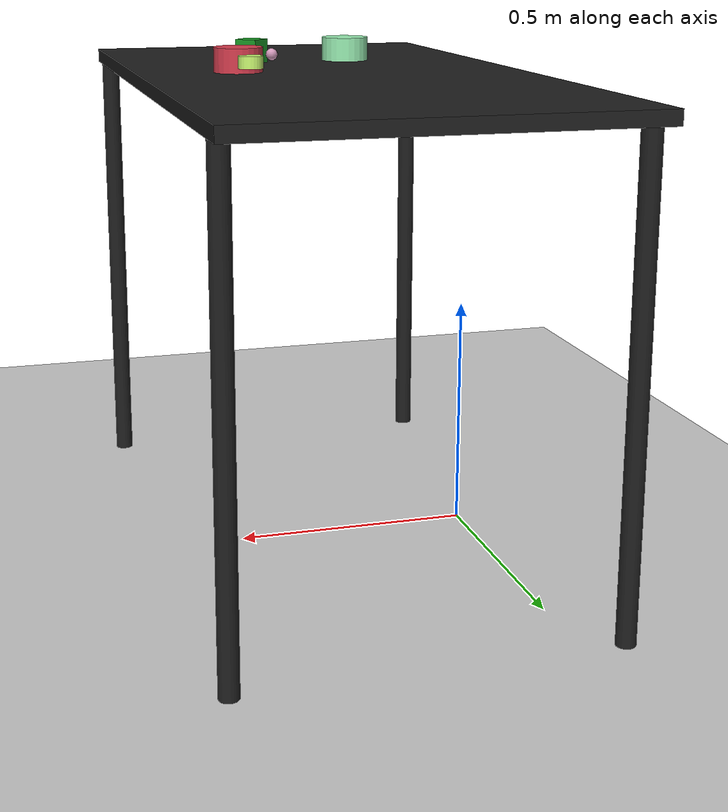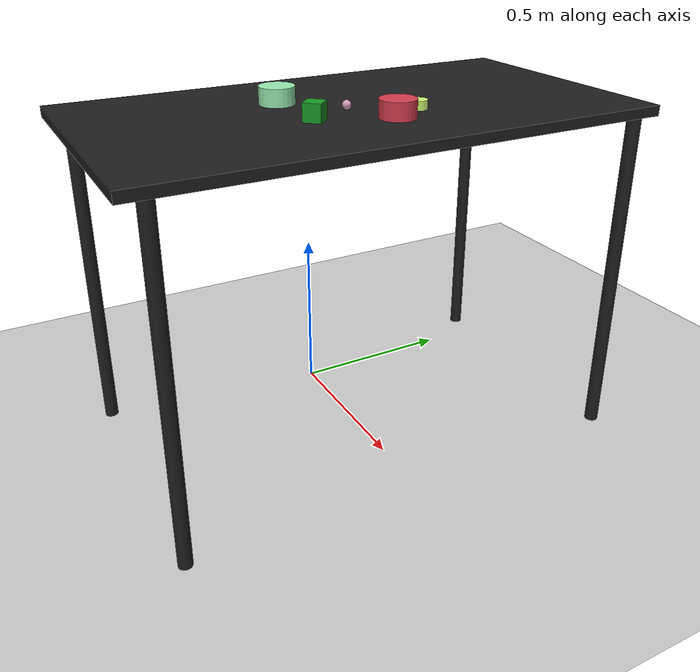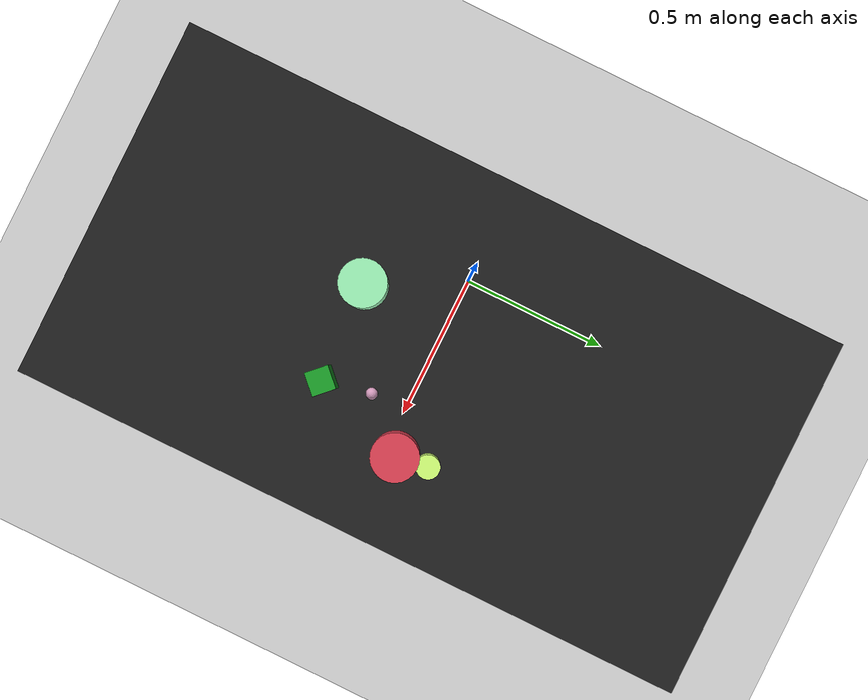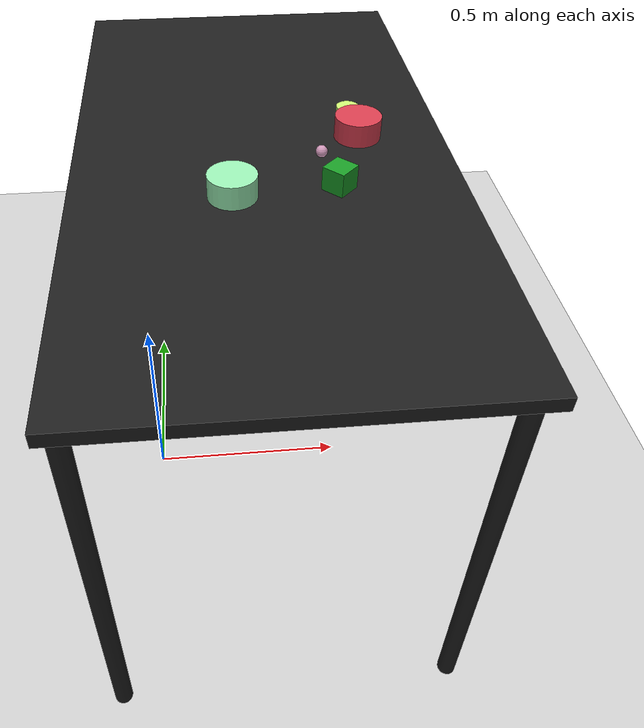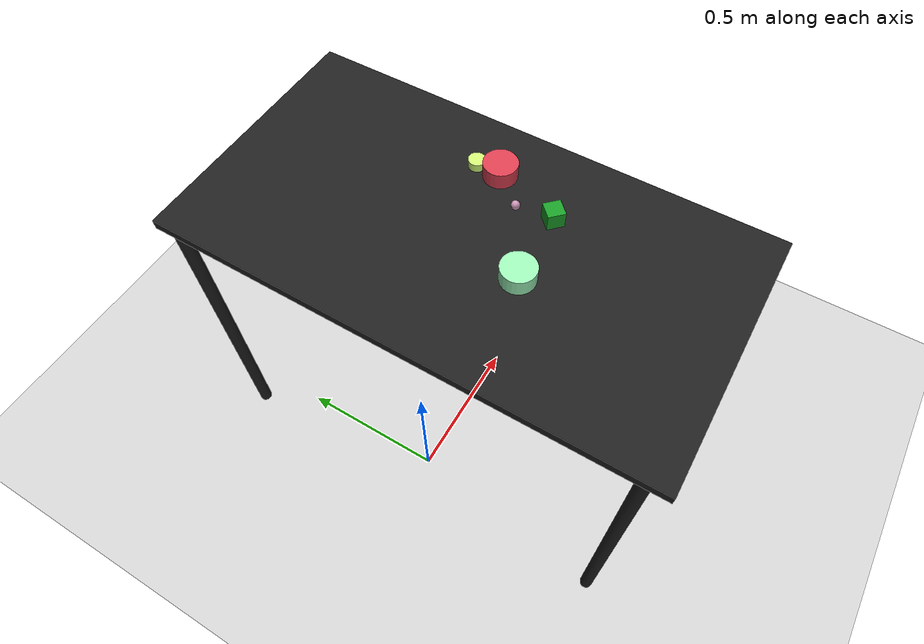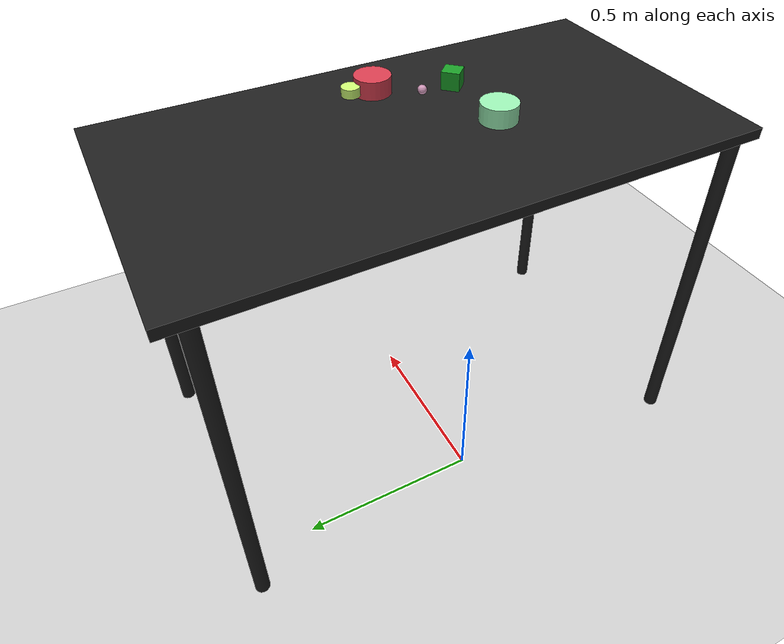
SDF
<?xml version="1.0" ?>
<sdf version="1.6">
  <world name="arm_world">
    <plugin filename="gz-sim-physics-system" name="gz::sim::systems::Physics">
      <engine>
        <filename>libgz-physics-bullet-featherstone-plugin.so</filename>
      </engine>
    </plugin>
    <plugin filename="gz-sim-user-commands-system" name="gz::sim::systems::UserCommands"/>
    <plugin filename="gz-sim-scene-broadcaster-system" name="gz::sim::systems::SceneBroadcaster"/>
    <plugin filename="gz-sim-sensors-system" name="gz::sim::systems::Sensors">
      <render_engine>ogre2</render_engine>
    </plugin>
    <gravity>0.0 0.0 -9.8</gravity>
    <scene>
      <shadows>false</shadows>
    </scene>
    <gui>
      <camera name="user_camera">
        <pose>0.75 -0.75 1.4 0 0.29 2.21</pose>
      </camera>
    </gui>
    <include>
      <uri>https://fuel.gazebosim.org/1.0/OpenRobotics/models/Sun</uri>
    </include>
    <model name="table">
      <static>true</static>
      <include>
        <uri>model://table</uri>
      </include>
      <pose>0.29 0 0 0 0 1.5708</pose>
    </model>
    <model name="ground_plane">
      <static>true</static>
      <link name="link">
        <collision name="collision">
          <geometry>
            <plane>
              <normal>0 0 1</normal>
            </plane>
          </geometry>
          <surface>
            <friction>
              <ode>
                <mu>1.0</mu>
                <mu2>1.0</mu2>
              </ode>
            </friction>
          </surface>
        </collision>
        <visual name="visual">
          <geometry>
            <plane>
              <normal>0 0 1</normal>
              <size>100 100</size>
            </plane>
          </geometry>
          <material>
            <ambient>0.8 0.8 0.8 1</ambient>
            <diffuse>0.8 0.8 0.8 1</diffuse>
            <specular>0.8 0.8 0.8 1</specular>
          </material>
        </visual>
      </link>
    </model>
    <model name="cube_m_0">
      <pose>0.428 -0.176 1.05 0 0 0.79</pose>
      <link name="cube_m_0_link">
        <inertial>
          <mass>0.05</mass>
          <inertia>
            <ixx>2.04e-7</ixx>
            <iyy>2.04e-7</iyy>
            <izz>3.9e-8</izz>
            <ixy>0</ixy>
            <ixz>0</ixz>
            <iyz>0</iyz>
          </inertia>
        </inertial>
        <collision name="cube_m_0_collision">
          <geometry>
            <box>
              <size>0.05 0.05 0.05</size>
            </box>
          </geometry>
          <surface>
            <friction>
              <ode>
                <mu>0.8</mu>
                <mu2>0.8</mu2>
                <fdir1>0 0 1</fdir1>
                <slip1>0.001</slip1>
                <slip2>0.001</slip2>
              </ode>
              <torsional>
                <coefficient>0.1</coefficient>
                <surface_radius>0.015</surface_radius>
                <use_patch_radius>true</use_patch_radius>
              </torsional>
            </friction>
            <contact>
              <ode>
                <kp>1e5</kp>
                <kd>10</kd>
                <max_vel>0.1</max_vel>
                <min_depth>0.001</min_depth>
                <soft_cfm>0.01</soft_cfm>
                <soft_erp>0.2</soft_erp>
              </ode>
            </contact>
            <bounce>
              <restitution_coefficient>0.2</restitution_coefficient>
              <threshold>0.01</threshold>
            </bounce>
          </surface>
        </collision>
        <visual name="cube_m_0_visual">
          <geometry>
            <box>
              <size>0.05 0.05 0.05</size>
            </box>
          </geometry>
          <material>
            <ambient>0.1 0.61 0.15 1</ambient>
            <diffuse>0.1 0.61 0.15 1</diffuse>
          </material>
        </visual>
        <velocity_decay>
          <linear>1</linear>
          <angular>1</angular>
        </velocity_decay>
      </link>
    </model>
    <model name="cylinder_l_1">
      <pose>0.499 0.024 1.05 0 0 0.23</pose>
      <link name="cylinder_l_1_link">
        <inertial>
          <mass>0.05</mass>
          <inertia>
            <ixx>2.04e-7</ixx>
            <iyy>2.04e-7</iyy>
            <izz>3.9e-8</izz>
            <ixy>0</ixy>
            <ixz>0</ixz>
            <iyz>0</iyz>
          </inertia>
        </inertial>
        <collision name="cylinder_l_1_collision">
          <geometry>
            <cylinder>
              <radius>0.05</radius>
              <length>0.05</length>
            </cylinder>
          </geometry>
          <surface>
            <friction>
              <ode>
                <mu>0.8</mu>
                <mu2>0.8</mu2>
                <fdir1>0 0 1</fdir1>
                <slip1>0.001</slip1>
                <slip2>0.001</slip2>
              </ode>
              <torsional>
                <coefficient>0.1</coefficient>
                <surface_radius>0.015</surface_radius>
                <use_patch_radius>true</use_patch_radius>
              </torsional>
            </friction>
            <contact>
              <ode>
                <kp>1e5</kp>
                <kd>10</kd>
                <max_vel>0.1</max_vel>
                <min_depth>0.001</min_depth>
                <soft_cfm>0.01</soft_cfm>
                <soft_erp>0.2</soft_erp>
              </ode>
            </contact>
            <bounce>
              <restitution_coefficient>0.2</restitution_coefficient>
              <threshold>0.01</threshold>
            </bounce>
          </surface>
        </collision>
        <visual name="cylinder_l_1_visual">
          <geometry>
            <cylinder>
              <radius>0.05</radius>
              <length>0.05</length>
            </cylinder>
          </geometry>
          <material>
            <ambient>0.84 0.24 0.31 1</ambient>
            <diffuse>0.84 0.24 0.31 1</diffuse>
          </material>
        </visual>
        <velocity_decay>
          <linear>1</linear>
          <angular>1</angular>
        </velocity_decay>
      </link>
    </model>
    <model name="cylinder_l_2">
      <pose>0.217 -0.186 1.05 0 0 4.1</pose>
      <link name="cylinder_l_2_link">
        <inertial>
          <mass>0.05</mass>
          <inertia>
            <ixx>2.04e-7</ixx>
            <iyy>2.04e-7</iyy>
            <izz>3.9e-8</izz>
            <ixy>0</ixy>
            <ixz>0</ixz>
            <iyz>0</iyz>
          </inertia>
        </inertial>
        <collision name="cylinder_l_2_collision">
          <geometry>
            <cylinder>
              <radius>0.05</radius>
              <length>0.05</length>
            </cylinder>
          </geometry>
          <surface>
            <friction>
              <ode>
                <mu>0.8</mu>
                <mu2>0.8</mu2>
                <fdir1>0 0 1</fdir1>
                <slip1>0.001</slip1>
                <slip2>0.001</slip2>
              </ode>
              <torsional>
                <coefficient>0.1</coefficient>
                <surface_radius>0.015</surface_radius>
                <use_patch_radius>true</use_patch_radius>
              </torsional>
            </friction>
            <contact>
              <ode>
                <kp>1e5</kp>
                <kd>10</kd>
                <max_vel>0.1</max_vel>
                <min_depth>0.001</min_depth>
                <soft_cfm>0.01</soft_cfm>
                <soft_erp>0.2</soft_erp>
              </ode>
            </contact>
            <bounce>
              <restitution_coefficient>0.2</restitution_coefficient>
              <threshold>0.01</threshold>
            </bounce>
          </surface>
        </collision>
        <visual name="cylinder_l_2_visual">
          <geometry>
            <cylinder>
              <radius>0.05</radius>
              <length>0.05</length>
            </cylinder>
          </geometry>
          <material>
            <ambient>0.6 0.93 0.7 1</ambient>
            <diffuse>0.6 0.93 0.7 1</diffuse>
          </material>
        </visual>
        <velocity_decay>
          <linear>1</linear>
          <angular>1</angular>
        </velocity_decay>
      </link>
    </model>
    <model name="cylinder_m_3">
      <pose>0.488 0.092 1.05 0 0 3.72</pose>
      <link name="cylinder_m_3_link">
        <inertial>
          <mass>0.05</mass>
          <inertia>
            <ixx>2.04e-7</ixx>
            <iyy>2.04e-7</iyy>
            <izz>3.9e-8</izz>
            <ixy>0</ixy>
            <ixz>0</ixz>
            <iyz>0</iyz>
          </inertia>
        </inertial>
        <collision name="cylinder_m_3_collision">
          <geometry>
            <cylinder>
              <radius>0.025</radius>
              <length>0.025</length>
            </cylinder>
          </geometry>
          <surface>
            <friction>
              <ode>
                <mu>0.8</mu>
                <mu2>0.8</mu2>
                <fdir1>0 0 1</fdir1>
                <slip1>0.001</slip1>
                <slip2>0.001</slip2>
              </ode>
              <torsional>
                <coefficient>0.1</coefficient>
                <surface_radius>0.015</surface_radius>
                <use_patch_radius>true</use_patch_radius>
              </torsional>
            </friction>
            <contact>
              <ode>
                <kp>1e5</kp>
                <kd>10</kd>
                <max_vel>0.1</max_vel>
                <min_depth>0.001</min_depth>
                <soft_cfm>0.01</soft_cfm>
                <soft_erp>0.2</soft_erp>
              </ode>
            </contact>
            <bounce>
              <restitution_coefficient>0.2</restitution_coefficient>
              <threshold>0.01</threshold>
            </bounce>
          </surface>
        </collision>
        <visual name="cylinder_m_3_visual">
          <geometry>
            <cylinder>
              <radius>0.025</radius>
              <length>0.025</length>
            </cylinder>
          </geometry>
          <material>
            <ambient>0.8 0.98 0.45 1</ambient>
            <diffuse>0.8 0.98 0.45 1</diffuse>
          </material>
        </visual>
        <velocity_decay>
          <linear>1</linear>
          <angular>1</angular>
        </velocity_decay>
      </link>
    </model>
    <model name="sphere_s_4">
      <pose>0.407 -0.074 1.05 0 0 2.7</pose>
      <link name="sphere_s_4_link">
        <inertial>
          <mass>0.05</mass>
          <inertia>
            <ixx>2.04e-7</ixx>
            <iyy>2.04e-7</iyy>
            <izz>3.9e-8</izz>
            <ixy>0</ixy>
            <ixz>0</ixz>
            <iyz>0</iyz>
          </inertia>
        </inertial>
        <collision name="sphere_s_4_collision">
          <geometry>
            <sphere>
              <radius>0.0125</radius>
            </sphere>
          </geometry>
          <surface>
            <friction>
              <ode>
                <mu>0.8</mu>
                <mu2>0.8</mu2>
                <fdir1>0 0 1</fdir1>
                <slip1>0.001</slip1>
                <slip2>0.001</slip2>
              </ode>
              <torsional>
                <coefficient>0.1</coefficient>
                <surface_radius>0.015</surface_radius>
                <use_patch_radius>true</use_patch_radius>
              </torsional>
            </friction>
            <contact>
              <ode>
                <kp>1e5</kp>
                <kd>10</kd>
                <max_vel>0.1</max_vel>
                <min_depth>0.001</min_depth>
                <soft_cfm>0.01</soft_cfm>
                <soft_erp>0.2</soft_erp>
              </ode>
            </contact>
            <bounce>
              <restitution_coefficient>0.2</restitution_coefficient>
              <threshold>0.01</threshold>
            </bounce>
          </surface>
        </collision>
        <visual name="sphere_s_4_visual">
          <geometry>
            <sphere>
              <radius>0.0125</radius>
            </sphere>
          </geometry>
          <material>
            <ambient>0.81 0.59 0.72 1</ambient>
            <diffuse>0.81 0.59 0.72 1</diffuse>
          </material>
        </visual>
        <velocity_decay>
          <linear>1</linear>
          <angular>1</angular>
        </velocity_decay>
      </link>
    </model>
  </world>
</sdf>

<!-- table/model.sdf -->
<sdf version="1.5">
  <model name="table">
    <static>true</static>
    <link name="link">
      <collision name="surface">
        <pose>0 0 1.0 0 0 0</pose>
        <geometry>
          <box>
            <size>1.5 0.8 0.03</size>
          </box>
        </geometry>
        <surface>
          <friction>
            <ode>
              <mu>0.6</mu>
              <mu2>0.6</mu2>
            </ode>
          </friction>
        </surface>
      </collision>
      <visual name="surface">
        <pose>0 0 1.0 0 0 0</pose>
        <geometry>
          <box>
            <size>1.5 0.8 0.03</size>
          </box>
        </geometry>
        <material>
          <script>
            <uri>file://media/materials/scripts/gazebo.material</uri>
            <name>Gazebo/Black</name>
          </script>
        </material>
      </visual>
      <collision name="front_left_leg">
        <pose>0.68 0.38 0.5 0 0 0</pose>
        <geometry>
          <cylinder>
            <radius>0.02</radius>
            <length>1.0</length>
          </cylinder>
        </geometry>
      </collision>
      <visual name="front_left_leg">
        <pose>0.68 0.38 0.5 0 0 0</pose>
        <geometry>
          <cylinder>
            <radius>0.02</radius>
            <length>1.0</length>
          </cylinder>
        </geometry>
        <material>
          <script>
            <uri>file://media/materials/scripts/gazebo.material</uri>
            <name>Gazebo/Black</name>
          </script>
        </material>
      </visual>
      <collision name="front_right_leg">
        <pose>0.68 -0.38 0.5 0 0 0</pose>
        <geometry>
          <cylinder>
            <radius>0.02</radius>
            <length>1.0</length>
          </cylinder>
        </geometry>
      </collision>
      <visual name="front_right_leg">
        <pose>0.68 -0.38 0.5 0 0 0</pose>
        <geometry>
          <cylinder>
            <radius>0.02</radius>
            <length>1.0</length>
          </cylinder>
        </geometry>
        <material>
          <script>
            <uri>file://media/materials/scripts/gazebo.material</uri>
            <name>Gazebo/Black</name>
          </script>
        </material>
      </visual>
      <collision name="back_right_leg">
        <pose>-0.68 -0.38 0.5 0 0 0</pose>
        <geometry>
          <cylinder>
            <radius>0.02</radius>
            <length>1.0</length>
          </cylinder>
        </geometry>
      </collision>
      <visual name="back_right_leg">
        <pose>-0.68 -0.38 0.5 0 0 0</pose>
        <geometry>
          <cylinder>
            <radius>0.02</radius>
            <length>1.0</length>
          </cylinder>
        </geometry>
        <material>
          <script>
            <uri>file://media/materials/scripts/gazebo.material</uri>
            <name>Gazebo/Black</name>
          </script>
        </material>
      </visual>
      <collision name="back_left_leg">
        <pose>-0.68 0.38 0.5 0 0 0</pose>
        <geometry>
          <cylinder>
            <radius>0.02</radius>
            <length>1.0</length>
          </cylinder>
        </geometry>
      </collision>
      <visual name="back_left_leg">
        <pose>-0.68 0.38 0.5 0 0 0</pose>
        <geometry>
          <cylinder>
            <radius>0.02</radius>
            <length>1.0</length>
          </cylinder>
        </geometry>
        <material>
          <script>
            <uri>file://media/materials/scripts/gazebo.material</uri>
            <name>Gazebo/Black</name>
          </script>
        </material>
      </visual>
    </link>
  </model>
</sdf>
